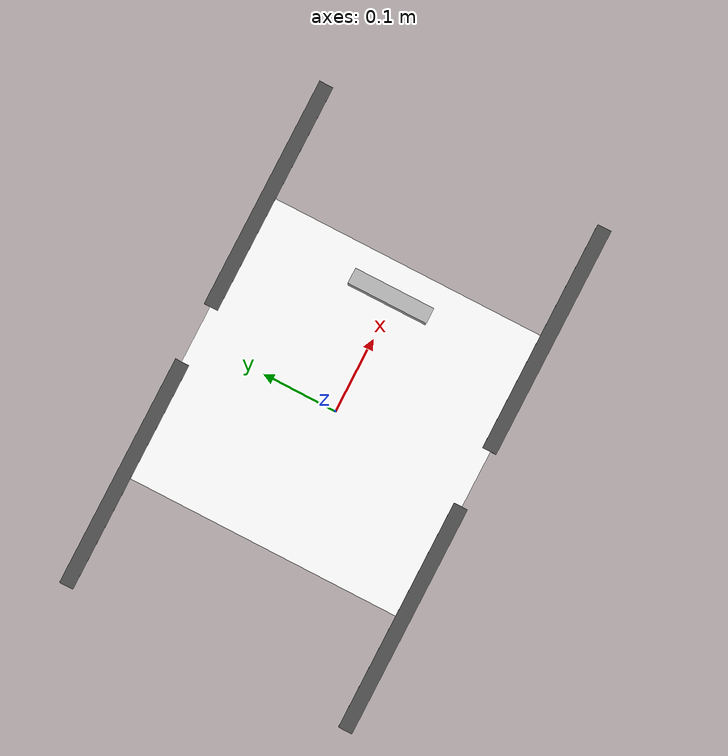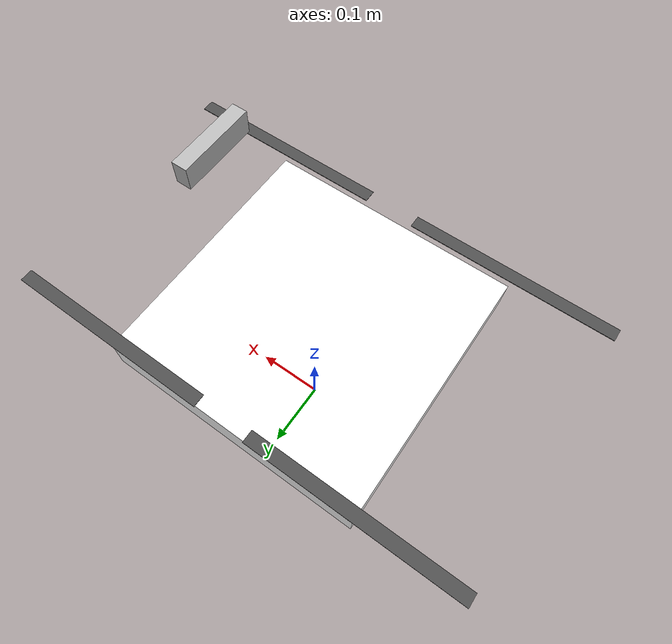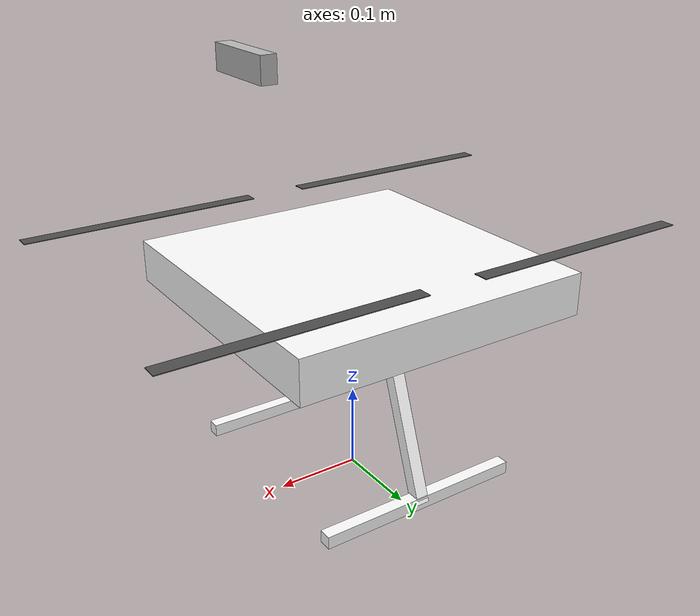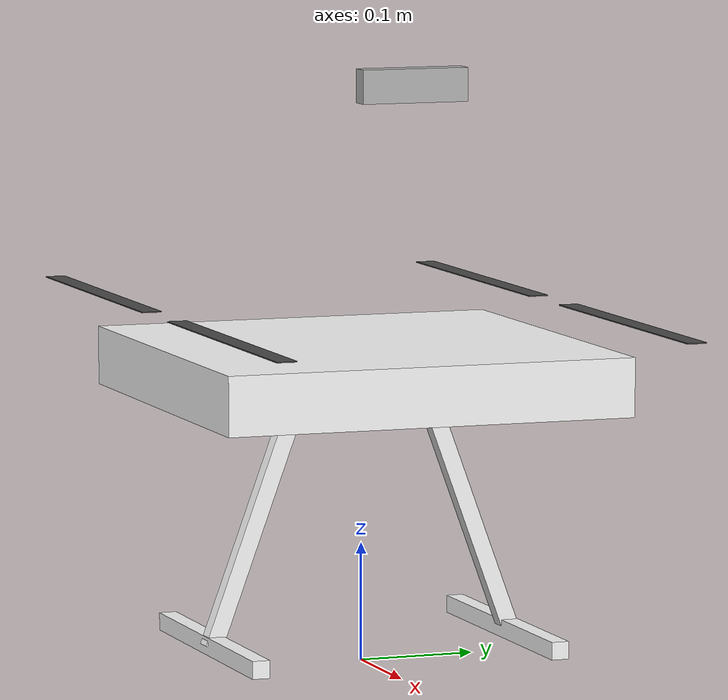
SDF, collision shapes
<?xml version="1.0" encoding="UTF-8"?>
<sdf version='1.9'>
  <model name='x500_depth'>
    <include merge='true'>
      <uri>x500</uri>
    </include>
    <include merge='true'>
      <uri>model://OakD-Lite</uri>
      <pose>.12 .03 .484 0 0 0</pose>
    </include>
    <joint name="CameraJoint" type="fixed">
      <parent>base_link</parent>
      <child>camera_link</child>
      <pose relative_to="base_link">.12 .03 .484 0 0 0</pose>
    </joint>
    <plugin filename="gz-sim-odometry-publisher-system" name="gz::sim::systems::OdometryPublisher">
      <dimensions>3</dimensions>
      <robot_base_frame>base_link</robot_base_frame>
      <xyz_offset>0 0 0</xyz_offset>
    </plugin>
    <plugin filename="libred_flight_interface_plugin.so" name="red::FlightInterface"/>

  </model>
</sdf>

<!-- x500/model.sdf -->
<sdf version='1.9'>
  <model name='x500'>
    <include merge='true'>
      <uri>model://x500_base</uri>
    </include>
    <plugin filename="gz-sim-multicopter-motor-model-system" name="gz::sim::systems::MulticopterMotorModel">
      <jointName>rotor_0_joint</jointName>
      <linkName>rotor_0</linkName>
      <turningDirection>ccw</turningDirection>
      <timeConstantUp>0.0125</timeConstantUp>
      <timeConstantDown>0.025</timeConstantDown>
      <maxRotVelocity>1200.0</maxRotVelocity>
      <motorConstant>8.54858e-06</motorConstant>
      <momentConstant>0.016</momentConstant>
      <commandSubTopic>command/motor_speed</commandSubTopic>
      <motorNumber>0</motorNumber>
      <rotorDragCoefficient>8.06428e-05</rotorDragCoefficient>
      <rollingMomentCoefficient>1e-06</rollingMomentCoefficient>
      <rotorVelocitySlowdownSim>10</rotorVelocitySlowdownSim>
      <motorType>velocity</motorType>
    </plugin>
    <plugin filename="gz-sim-multicopter-motor-model-system" name="gz::sim::systems::MulticopterMotorModel">
      <jointName>rotor_1_joint</jointName>
      <linkName>rotor_1</linkName>
      <turningDirection>ccw</turningDirection>
      <timeConstantUp>0.0125</timeConstantUp>
      <timeConstantDown>0.025</timeConstantDown>
      <maxRotVelocity>1200.0</maxRotVelocity>
      <motorConstant>8.54858e-06</motorConstant>
      <momentConstant>0.016</momentConstant>
      <commandSubTopic>command/motor_speed</commandSubTopic>
      <motorNumber>1</motorNumber>
      <rotorDragCoefficient>8.06428e-05</rotorDragCoefficient>
      <rollingMomentCoefficient>1e-06</rollingMomentCoefficient>
      <rotorVelocitySlowdownSim>10</rotorVelocitySlowdownSim>
      <motorType>velocity</motorType>
    </plugin>
    <plugin filename="gz-sim-multicopter-motor-model-system" name="gz::sim::systems::MulticopterMotorModel">
      <jointName>rotor_2_joint</jointName>
      <linkName>rotor_2</linkName>
      <turningDirection>cw</turningDirection>
      <timeConstantUp>0.0125</timeConstantUp>
      <timeConstantDown>0.025</timeConstantDown>
      <maxRotVelocity>1200.0</maxRotVelocity>
      <motorConstant>8.54858e-06</motorConstant>
      <momentConstant>0.016</momentConstant>
      <commandSubTopic>command/motor_speed</commandSubTopic>
      <motorNumber>2</motorNumber>
      <rotorDragCoefficient>8.06428e-05</rotorDragCoefficient>
      <rollingMomentCoefficient>1e-06</rollingMomentCoefficient>
      <rotorVelocitySlowdownSim>10</rotorVelocitySlowdownSim>
      <motorType>velocity</motorType>
    </plugin>
    <plugin filename="gz-sim-multicopter-motor-model-system" name="gz::sim::systems::MulticopterMotorModel">
      <jointName>rotor_3_joint</jointName>
      <linkName>rotor_3</linkName>
      <turningDirection>cw</turningDirection>
      <timeConstantUp>0.0125</timeConstantUp>
      <timeConstantDown>0.025</timeConstantDown>
      <maxRotVelocity>1200.0</maxRotVelocity>
      <motorConstant>8.54858e-06</motorConstant>
      <momentConstant>0.016</momentConstant>
      <commandSubTopic>command/motor_speed</commandSubTopic>
      <motorNumber>3</motorNumber>
      <rotorDragCoefficient>8.06428e-05</rotorDragCoefficient>
      <rollingMomentCoefficient>1e-06</rollingMomentCoefficient>
      <rotorVelocitySlowdownSim>10</rotorVelocitySlowdownSim>
      <motorType>velocity</motorType>
    </plugin>
  </model>
</sdf>

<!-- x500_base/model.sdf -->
<sdf version='1.9'>
  <model name='x500_base'>
    <pose>0 0 .24 0 0 0</pose>
    <self_collide>false</self_collide>
    <static>false</static>
    <link name="base_link">
      <inertial>
        <mass>2.0</mass>
        <inertia>
          <ixx>0.02166666666666667</ixx>
          <ixy>0</ixy>
          <ixz>0</ixz>
          <iyy>0.02166666666666667</iyy>
          <iyz>0</iyz>
          <izz>0.04000000000000001</izz>
        </inertia>
      </inertial>
      <gravity>true</gravity>
      <velocity_decay/>
      <visual name="base_link_visual">
        <pose>0 0 .025 0 0 3.141592654</pose>
        <geometry>
          <mesh>
            <scale>1 1 1</scale>
            <uri>model://x500_base/meshes/NXP-HGD-CF.dae</uri>
          </mesh>
        </geometry>
      </visual>
      <visual name="5010_motor_base_0">
        <pose>0.174 0.174 .032 0 0 -.45</pose>
        <geometry>
          <mesh>
            <scale>1 1 1</scale>
            <uri>model://x500_base/meshes/5010Base.dae</uri>
          </mesh>
        </geometry>
      </visual>
      <visual name="5010_motor_base_1">
        <pose>-0.174 0.174 .032 0 0 -.45</pose>
        <geometry>
          <mesh>
            <scale>1 1 1</scale>
            <uri>model://x500_base/meshes/5010Base.dae</uri>
          </mesh>
        </geometry>
      </visual>
      <visual name="5010_motor_base_2">
        <pose>0.174 -0.174 .032 0 0 -.45</pose>
        <geometry>
          <mesh>
            <scale>1 1 1</scale>
            <uri>model://x500_base/meshes/5010Base.dae</uri>
          </mesh>
        </geometry>
      </visual>
      <visual name="5010_motor_base_3">
        <pose>-0.174 -0.174 .032 0 0 -.45</pose>
        <geometry>
          <mesh>
            <scale>1 1 1</scale>
            <uri>model://x500_base/meshes/5010Base.dae</uri>
          </mesh>
        </geometry>
      </visual>
      <visual name="NXP_FMUK66_FRONT">
        <pose>0.047 .001 .043 1 0 1.57</pose>
        <cast_shadows>false</cast_shadows>
        <geometry>
          <plane>
            <normal>0 0 1</normal>
            <size>.013 .007</size>
          </plane>
        </geometry>
        <material>
          <diffuse>1.0 1.0 1.0</diffuse>
          <specular>1.0 1.0 1.0</specular>
          <pbr>
            <metal>
              <albedo_map>model://x500_base/materials/textures/nxp.png</albedo_map>
            </metal>
          </pbr>
        </material>
      </visual>
      <visual name="NXP_FMUK66_TOP">
        <pose>-0.023 0 .0515 0 0 -1.57</pose>
        <cast_shadows>false</cast_shadows>
        <geometry>
          <plane>
            <normal>0 0 1</normal>
            <size>.013 .007</size>
          </plane>
        </geometry>
        <material>
          <diffuse>1.0 1.0 1.0</diffuse>
          <specular>1.0 1.0 1.0</specular>
          <pbr>
            <metal>
              <albedo_map>model://x500_base/materials/textures/nxp.png</albedo_map>
            </metal>
          </pbr>
        </material>
      </visual>
      <visual name="RDDRONE_FMUK66_TOP">
        <pose>-.03 0 .0515 0 0 -1.57</pose>
        <cast_shadows>false</cast_shadows>
        <geometry>
          <plane>
            <normal>0 0 1</normal>
            <size>.032 .0034</size>
          </plane>
        </geometry>
        <material>
          <diffuse>1.0 1.0 1.0</diffuse>
          <specular>1.0 1.0 1.0</specular>
          <pbr>
            <metal>
              <albedo_map>model://x500_base/materials/textures/rd.png</albedo_map>
            </metal>
          </pbr>
        </material>
      </visual>
      <collision name="base_link_collision_0">
        <pose>0 0 .007 0 0 0</pose>
        <geometry>
          <box>
            <size>0.35355339059327373 0.35355339059327373 0.05</size>
          </box>
        </geometry>
        <surface>
          <contact>
            <ode>
              <min_depth>0.001</min_depth>
              <max_vel>0</max_vel>
            </ode>
          </contact>
          <friction>
            <ode/>
          </friction>
        </surface>
      </collision>
      <collision name="base_link_collision_1">
        <pose>0 -0.098 -.123 -0.35 0 0</pose>
        <geometry>
          <box>
            <size>0.015 0.015 0.21</size>
          </box>
        </geometry>
        <surface>
          <contact>
            <ode>
              <min_depth>0.001</min_depth>
              <max_vel>0</max_vel>
            </ode>
          </contact>
          <friction>
            <ode/>
          </friction>
        </surface>
      </collision>
      <collision name="base_link_collision_2">
        <pose>0 0.098 -.123 0.35 0 0</pose>
        <geometry>
          <box>
            <size>0.015 0.015 0.21</size>
          </box>
        </geometry>
        <surface>
          <contact>
            <ode>
              <min_depth>0.001</min_depth>
              <max_vel>0</max_vel>
            </ode>
          </contact>
          <friction>
            <ode/>
          </friction>
        </surface>
      </collision>
      <collision name="base_link_collision_3">
        <pose>0 -0.132 -.2195 0 0 0</pose>
        <geometry>
          <box>
            <size>0.25 0.015 0.015</size>
          </box>
        </geometry>
        <surface>
          <contact>
            <ode>
              <min_depth>0.001</min_depth>
              <max_vel>0</max_vel>
            </ode>
          </contact>
          <friction>
            <ode/>
          </friction>
        </surface>
      </collision>
      <collision name="base_link_collision_4">
        <pose>0 0.132 -.2195 0 0 0</pose>
        <geometry>
          <box>
            <size>0.25 0.015 0.015</size>
          </box>
        </geometry>
        <surface>
          <contact>
            <ode>
              <min_depth>0.001</min_depth>
              <max_vel>0</max_vel>
            </ode>
          </contact>
          <friction>
            <ode/>
          </friction>
        </surface>
      </collision>
      <sensor name="air_pressure_sensor" type="air_pressure">
        <always_on>1</always_on>
        <update_rate>50</update_rate>
        <air_pressure>
          <!-- Noise modeled after BMP390 -->
          <pressure>
            <noise type="gaussian">
              <mean>0</mean>
              <stddev>3</stddev>
            </noise>
          </pressure>
        </air_pressure>
      </sensor>
      <sensor name="magnetometer_sensor" type="magnetometer">
        <always_on>1</always_on>
        <update_rate>100</update_rate>
        <magnetometer>
          <!-- TODO: update to fix units and coordinate system when we move past Harmonic -->
          <!-- See https://github.com/gazebosim/gz-sim/pull/2460 -->
          <!-- 3mgauss RMS: NOTE: noise is in tesla but sensor reports data in gauss -->
          <!-- Noise modeled after IIS2MDC -->
          <x>
            <noise type="gaussian">
              <stddev>0.0001</stddev>
            </noise>
          </x>
          <y>
            <noise type="gaussian">
              <stddev>0.0001</stddev>
            </noise>
          </y>
          <z>
            <noise type="gaussian">
              <stddev>0.0001</stddev>
            </noise>
          </z>
        </magnetometer>
      </sensor>
      <sensor name="imu_sensor" type="imu">
        <always_on>1</always_on>
        <update_rate>250</update_rate>
        <imu>
          <angular_velocity>
            <!-- Noise modeled after IIM42653 -->
            <!-- 0.05 deg/s converted to rad/s -->
            <x>
              <noise type="gaussian">
                <mean>0.0</mean>
                <stddev>0.0</stddev>
              </noise>
            </x>
            <y>
              <noise type="gaussian">
                <mean>0.0</mean>
                <stddev>0.0</stddev>
              </noise>
            </y>
            <z>
              <noise type="gaussian">
                <mean>0.0</mean>
                <stddev>0.0</stddev>
              </noise>
            </z>
          </angular_velocity>
          <linear_acceleration>
            <!-- Noise modeled after IIM42653 -->
            <!-- X & Y axis: 0.65 mg-rms converted to m/ss -->
            <x>
              <noise type="gaussian">
                <mean>0.0</mean>
                <stddev>0.0</stddev>
              </noise>
            </x>
            <y>
              <noise type="gaussian">
                <mean>0.0</mean>
                <stddev>0.0</stddev>
              </noise>
            </y>
            <!-- Z axis: 0.70 mg-rms converted to m/ss-->
            <z>
              <noise type="gaussian">
                <mean>0.0</mean>
                <stddev>0.0</stddev>
              </noise>
            </z>
          </linear_acceleration>
        </imu>
      </sensor>
      <sensor name="navsat_sensor" type="navsat">
        <always_on>1</always_on>
        <update_rate>30</update_rate>
      </sensor>
    </link>
    <link name="rotor_0">
      <gravity>true</gravity>
      <self_collide>false</self_collide>
      <velocity_decay/>
      <pose>0.174 -0.174 0.06 0 0 0</pose>
      <inertial>
          <mass>0.016076923076923075</mass>
          <inertia>
            <ixx>3.8464910483993325e-07</ixx>
            <iyy>2.6115851691700804e-05</iyy>
            <izz>2.649858234714004e-05</izz>
          </inertia>
        </inertial>
      <visual name="rotor_0_visual">
        <pose>-0.022 -0.14638461538461536 -0.016 0 0 0</pose>
        <geometry>
          <mesh>
            <scale>0.8461538461538461 0.8461538461538461 0.8461538461538461</scale>
            <uri>model://x500_base/meshes/1345_prop_ccw.stl</uri>
          </mesh>
        </geometry>
        <material>
          <script>
            <name>Gazebo/DarkGrey</name>
            <uri>file://media/materials/scripts/gazebo.material</uri>
          </script>
        </material>
      </visual>
      <visual name="rotor_0_visual_motor_bell">
        <pose>0 0 -.032 0 0 0</pose>
        <geometry>
          <mesh>
            <scale>1 1 1</scale>
            <uri>model://x500_base/meshes/5010Bell.dae</uri>
          </mesh>
        </geometry>
      </visual>
      <collision name="rotor_0_collision">
        <pose>0 0 0 0 0 0 </pose>
        <geometry>
          <box>
            <size>0.2792307692307692 0.016923076923076923 0.0008461538461538462</size>
          </box>
        </geometry>
        <surface>
          <contact>
            <ode>
              <min_depth>0.001</min_depth>
              <max_vel>0</max_vel>
            </ode>
          </contact>
          <friction>
            <ode/>
          </friction>
        </surface>
      </collision>
    </link>
    <joint name="rotor_0_joint" type="revolute">
      <parent>base_link</parent>
      <child>rotor_0</child>
      <axis>
        <xyz>0 0 1</xyz>
        <limit>
          <lower>-1e+16</lower>
          <upper>1e+16</upper>
        </limit>
        <dynamics>
          <spring_reference>0</spring_reference>
          <spring_stiffness>0</spring_stiffness>
        </dynamics>
      </axis>
    </joint>
    <link name="rotor_1">
      <gravity>true</gravity>
      <self_collide>false</self_collide>
      <velocity_decay/>
      <pose>-0.174 0.174 0.06 0 0 0</pose>
      <inertial>
          <mass>0.016076923076923075</mass>
          <inertia>
            <ixx>3.8464910483993325e-07</ixx>
            <iyy>2.6115851691700804e-05</iyy>
            <izz>2.649858234714004e-05</izz>
          </inertia>
        </inertial>
      <visual name="rotor_1_visual">
        <pose>-0.022 -0.14638461538461536 -0.016 0 0 0</pose>
        <geometry>
          <mesh>
            <scale>0.8461538461538461 0.8461538461538461 0.8461538461538461</scale>
            <uri>model://x500_base/meshes/1345_prop_ccw.stl</uri>
          </mesh>
        </geometry>
        <material>
          <script>
            <name>Gazebo/DarkGrey</name>
            <uri>file://media/materials/scripts/gazebo.material</uri>
          </script>
        </material>
      </visual>
      <visual name="rotor_1_visual_motor_top">
        <pose>0 0 -.032 0 0 0</pose>
        <geometry>
          <mesh>
            <scale>1 1 1</scale>
            <uri>model://x500_base/meshes/5010Bell.dae</uri>
          </mesh>
        </geometry>
      </visual>
      <collision name="rotor_1_collision">
        <pose>0 0 0 0 0 0 </pose>
        <geometry>
          <box>
            <size>0.2792307692307692 0.016923076923076923 0.0008461538461538462</size>
          </box>
        </geometry>
        <surface>
          <contact>
            <ode>
              <min_depth>0.001</min_depth>
              <max_vel>0</max_vel>
            </ode>
          </contact>
          <friction>
            <ode/>
          </friction>
        </surface>
      </collision>
    </link>
    <joint name="rotor_1_joint" type="revolute">
      <parent>base_link</parent>
      <child>rotor_1</child>
      <axis>
        <xyz>0 0 1</xyz>
        <limit>
          <lower>-1e+16</lower>
          <upper>1e+16</upper>
        </limit>
        <dynamics>
          <spring_reference>0</spring_reference>
          <spring_stiffness>0</spring_stiffness>
        </dynamics>
      </axis>
    </joint>
    <link name="rotor_2">
      <gravity>true</gravity>
      <self_collide>false</self_collide>
      <velocity_decay/>
      <pose>0.174 0.174 0.06 0 0 0</pose>
      <inertial>
          <mass>0.016076923076923075</mass>
          <inertia>
            <ixx>3.8464910483993325e-07</ixx>
            <iyy>2.6115851691700804e-05</iyy>
            <izz>2.649858234714004e-05</izz>
          </inertia>
        </inertial>
      <visual name="rotor_2_visual">
        <pose>-0.022 -0.14638461538461536 -0.016 0 0 0</pose>
        <geometry>
          <mesh>
            <scale>0.8461538461538461 0.8461538461538461 0.8461538461538461</scale>
            <uri>model://x500_base/meshes/1345_prop_cw.stl</uri>
          </mesh>
        </geometry>
        <material>
          <script>
            <name>Gazebo/DarkGrey</name>
            <uri>file://media/materials/scripts/gazebo.material</uri>
          </script>
        </material>
      </visual>
      <visual name="rotor_2_visual_motor_top">
        <pose>0 0 -.032 0 0 0</pose>
        <geometry>
          <mesh>
            <scale>1 1 1</scale>
            <uri>model://x500_base/meshes/5010Bell.dae</uri>
          </mesh>
        </geometry>
      </visual>
      <collision name="rotor_2_collision">
        <pose>0 0 0 0 0 0 </pose>
        <geometry>
          <box>
            <size>0.2792307692307692 0.016923076923076923 0.0008461538461538462</size>
          </box>
        </geometry>
        <surface>
          <contact>
            <ode>
              <min_depth>0.001</min_depth>
              <max_vel>0</max_vel>
            </ode>
          </contact>
          <friction>
            <ode/>
          </friction>
        </surface>
      </collision>
    </link>
    <joint name="rotor_2_joint" type="revolute">
      <parent>base_link</parent>
      <child>rotor_2</child>
      <axis>
        <xyz>0 0 1</xyz>
        <limit>
          <lower>-1e+16</lower>
          <upper>1e+16</upper>
        </limit>
        <dynamics>
          <spring_reference>0</spring_reference>
          <spring_stiffness>0</spring_stiffness>
        </dynamics>
      </axis>
    </joint>
    <link name="rotor_3">
      <gravity>true</gravity>
      <self_collide>false</self_collide>
      <velocity_decay/>
      <pose>-0.174 -0.174 0.06 0 0 0</pose>
      <inertial>
          <mass>0.016076923076923075</mass>
          <inertia>
            <ixx>3.8464910483993325e-07</ixx>
            <iyy>2.6115851691700804e-05</iyy>
            <izz>2.649858234714004e-05</izz>
          </inertia>
        </inertial>
      <visual name="rotor_3_visual">
        <pose>-0.022 -0.14638461538461536 -0.016 0 0 0</pose>
        <geometry>
          <mesh>
            <scale>0.8461538461538461 0.8461538461538461 0.8461538461538461</scale>
            <uri>model://x500_base/meshes/1345_prop_cw.stl</uri>
          </mesh>
        </geometry>
        <material>
          <script>
            <name>Gazebo/DarkGrey</name>
            <uri>file://media/materials/scripts/gazebo.material</uri>
          </script>
        </material>
      </visual>
      <visual name="rotor_3_visual_motor_top">
        <pose>0 0 -.032 0 0 0</pose>
        <geometry>
          <mesh>
            <scale>1 1 1</scale>
            <uri>model://x500_base/meshes/5010Bell.dae</uri>
          </mesh>
        </geometry>
      </visual>
      <collision name="rotor_3_collision">
        <pose>0 0 0 0 0 0 </pose>
        <geometry>
          <box>
            <size>0.2792307692307692 0.016923076923076923 0.0008461538461538462</size>
          </box>
        </geometry>
        <surface>
          <contact>
            <ode>
              <min_depth>0.001</min_depth>
              <max_vel>0</max_vel>
            </ode>
          </contact>
          <friction>
            <ode/>
          </friction>
        </surface>
      </collision>
    </link>
    <joint name="rotor_3_joint" type="revolute">
      <parent>base_link</parent>
      <child>rotor_3</child>
      <axis>
        <xyz>0 0 1</xyz>
        <limit>
          <lower>-1e+16</lower>
          <upper>1e+16</upper>
        </limit>
        <dynamics>
          <spring_reference>0</spring_reference>
          <spring_stiffness>0</spring_stiffness>
        </dynamics>
      </axis>
    </joint>
  </model>
</sdf>

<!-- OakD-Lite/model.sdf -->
<sdf version='1.9'>
  <model name='OakD-Lite'>
    <pose>0 0 0 0 0 0</pose>
    <self_collide>false</self_collide>
    <static>false</static>
    <link name="camera_link">
      <inertial>
        <pose>0.00358 -0.03 .014 0 0 0</pose>
        <mass>0.061</mass>
        <inertia>
          <ixx>0.0000460804</ixx>
          <ixy>0</ixy>
          <ixz>0</ixz>
          <iyy>0.0000055421</iyy>
          <iyz>0</iyz>
          <izz>0.0000436519</izz>
        </inertia>
      </inertial>
      <visual name="OakD-Lite/visual">
        <pose>0 0 0 0 0 0</pose>
        <geometry>
          <mesh>
            <scale>1 1 1</scale>
            <uri>model://OakD-Lite/meshes/OakDLite.dae</uri>
          </mesh>
        </geometry>
      </visual>
      <collision name="OakD-Lite/collision">
        <pose>0.00358 -0.03 .014 0 0 0</pose>
        <geometry>
          <box>
            <size>0.0175 0.091 0.028</size>
          </box>
        </geometry>
      </collision>
      <sensor name="IMX214" type="camera">
        <pose>0.01233 -0.03 .01878 0 0 0</pose>
        <camera>
          <!-- Keep RGB intrinsics aligned with depth for RGB-D SLAM -->
          <horizontal_fov>1.274</horizontal_fov>
          <image>
            <width>640</width>
            <height>480</height>
          </image>
          <clip>
            <near>0.1</near>
            <far>100</far>
          </clip>
        </camera>
        <always_on>1</always_on>
        <update_rate>30</update_rate>
        <visualize>true</visualize>
      </sensor>
      <sensor name="StereoOV7251" type="depth_camera">
        <pose>0.01233 -0.03 .01878 0 0 0</pose>
        <camera>
          <horizontal_fov>1.274</horizontal_fov>
          <image>
            <width>640</width>
            <height>480</height>
            <format>R_FLOAT32</format>
          </image>
          <clip>
            <near>0.2</near>
            <far>19.1</far>
          </clip>
        </camera>
        <always_on>1</always_on>
        <update_rate>30</update_rate>
        <visualize>true</visualize>

        <!-- Comment out the topic tag because we want namespaced topics -->
      </sensor>
      <sensor name="StereoLeft" type="camera">
        <pose>0.01233 0.075 .01878 0 0 0</pose>
        <camera>
          <horizontal_fov>1.274</horizontal_fov>
          <image>
            <width>640</width>
            <height>480</height>
          </image>
          <clip>
            <near>0.1</near>
            <far>100</far>
          </clip>
        </camera>
        <always_on>1</always_on>
        <update_rate>30</update_rate>
        <visualize>true</visualize>
      </sensor>
      <sensor name="StereoRight" type="camera">
        <pose>0.01233 -0.075 .01878 0 0 0</pose>
        <camera>
          <horizontal_fov>1.274</horizontal_fov>
          <image>
            <width>640</width>
            <height>480</height>
          </image>
          <clip>
            <near>0.1</near>
            <far>100</far>
          </clip>
        </camera>
        <always_on>1</always_on>
        <update_rate>30</update_rate>
        <visualize>true</visualize>
      </sensor>
      <gravity>true</gravity>
      <velocity_decay/>
    </link>
  </model>
</sdf>
